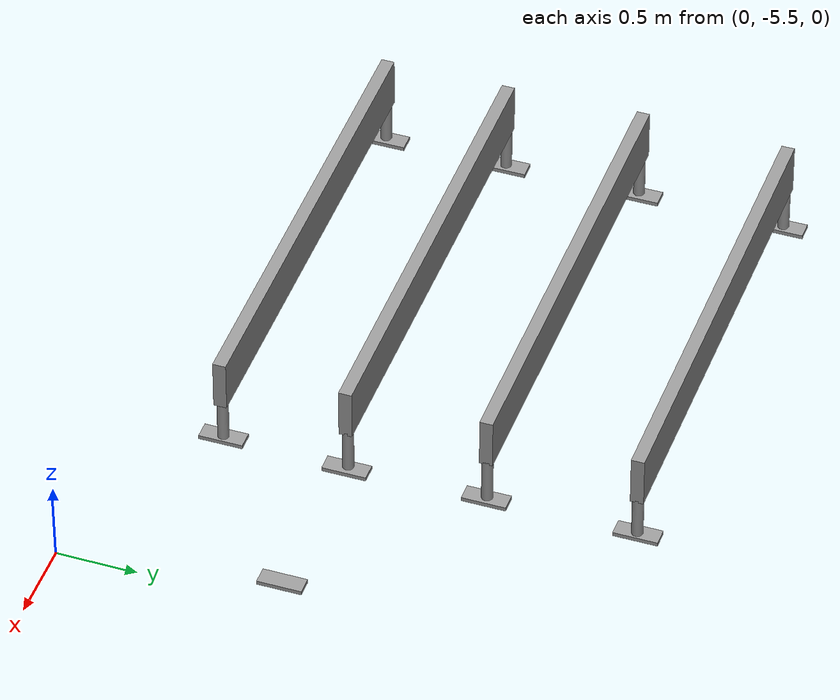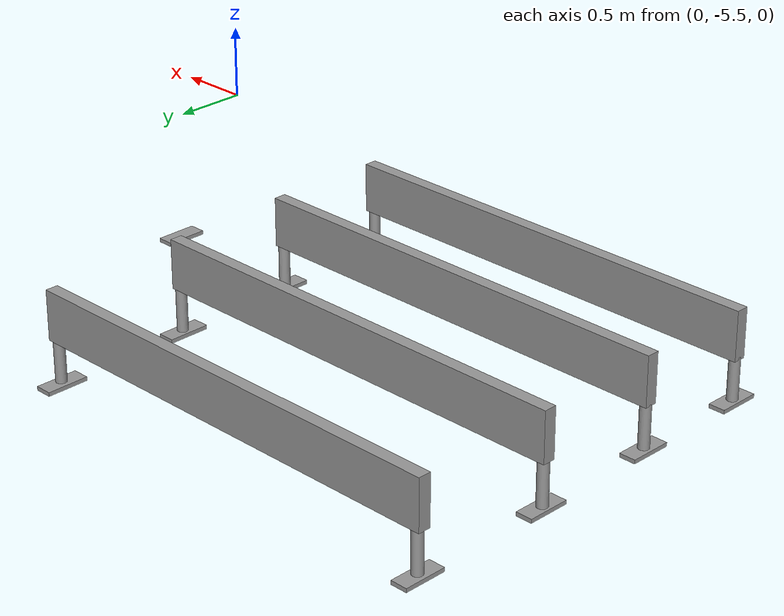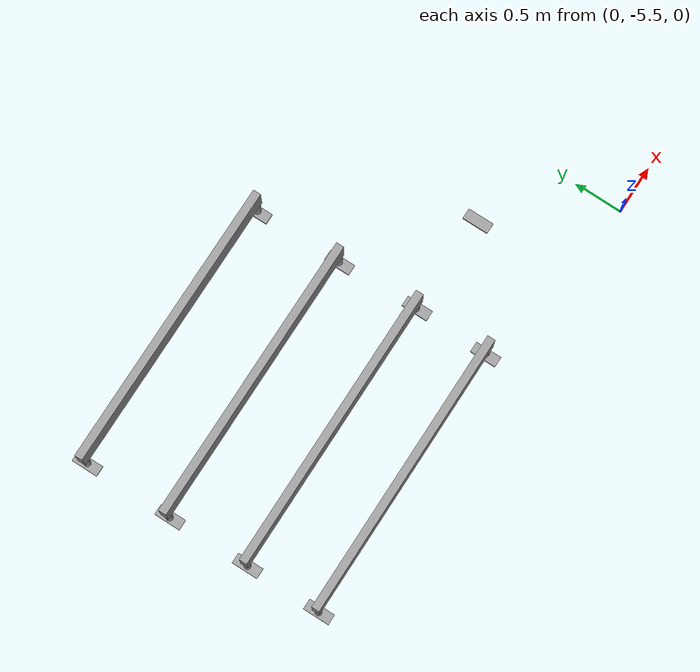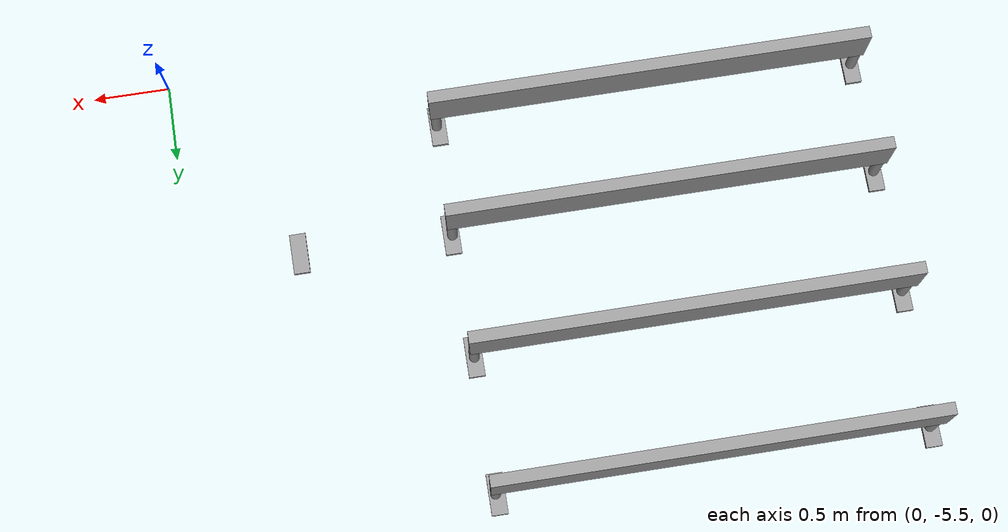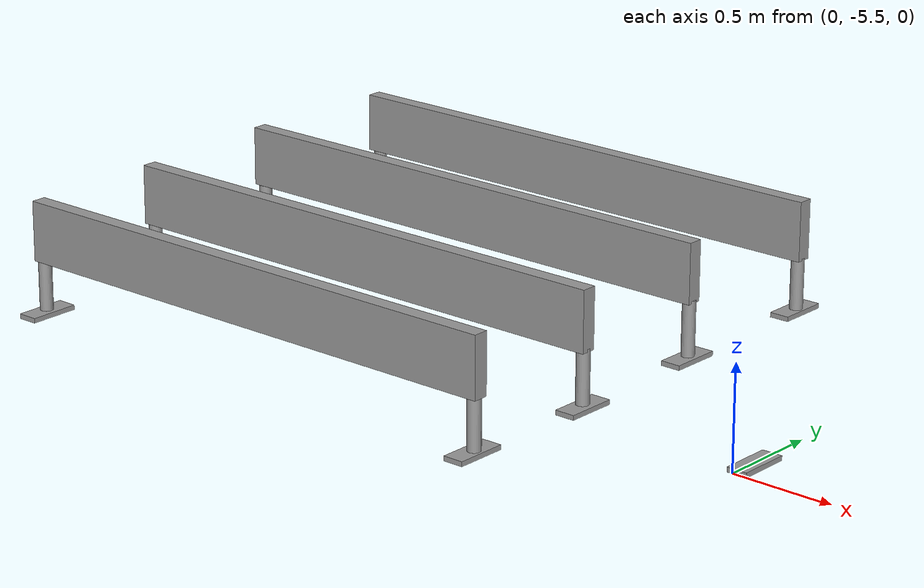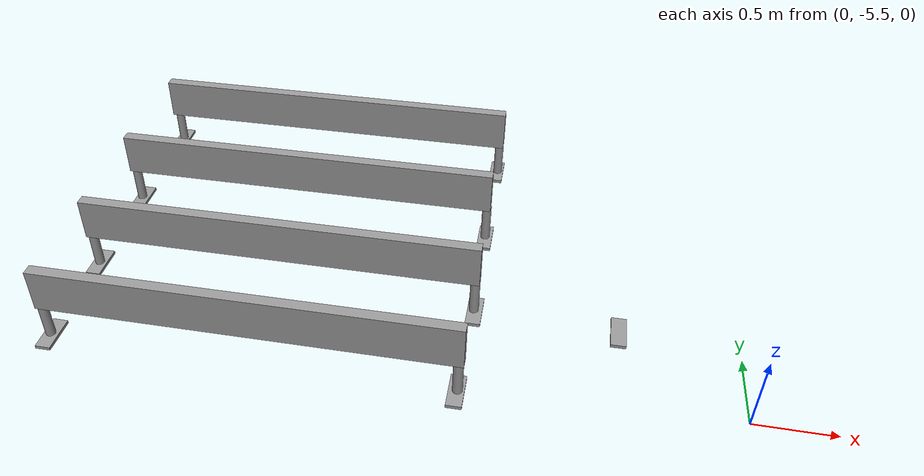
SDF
<sdf version="1.6">
 <model name="banchi">
  <link name="link_0_clone_11">
   <inertial>
    <mass>0.000785881</mass>
    <inertia>
     <ixx>5.11476e-06</ixx>
     <ixy>0</ixy>
     <ixz>0</ixz>
     <iyy>8.37345e-07</iyy>
     <iyz>0</iyz>
     <izz>5.8658e-06</izz>
    </inertia>
   </inertial>
   <pose>-0.686084 -4.37283 -0.495327 0 -0 0</pose>
   <visual name="visual">
    <geometry><box><size>0.110122 0.278282 0.025669</size></box></geometry>
    <material>
     <lighting>1</lighting>
     <script><uri>file://media/materials/scripts/gazebo.material</uri><name>Gazebo/Grey</name></script>
     <shader type="pixel"/>
    </material>
   </visual>
   <collision name="collision">
    <geometry><box><size>0.110122 0.278282 0.025669</size></box></geometry>
    <surface>
     <friction>
      <ode><mu>1</mu><mu2>1</mu2><fdir1>0 0 0</fdir1><slip1>0</slip1><slip2>0</slip2></ode>
      <torsional>
       <coefficient>1</coefficient>
       <patch_radius>0</patch_radius>
       <surface_radius>0</surface_radius>
       <use_patch_radius>1</use_patch_radius>
       <ode><slip>0</slip></ode>
      </torsional>
     </friction>
     <bounce><restitution_coefficient>0</restitution_coefficient><threshold>1e+06</threshold></bounce>
     <contact>
      <collide_without_contact>0</collide_without_contact>
      <collide_without_contact_bitmask>1</collide_without_contact_bitmask>
      <collide_bitmask>1</collide_bitmask>
      <ode>
       <soft_cfm>0</soft_cfm>
       <soft_erp>0.2</soft_erp>
       <kp>1e+13</kp>
       <kd>1</kd>
       <max_vel>0.01</max_vel>
       <min_depth>0</min_depth>
      </ode>
      <bullet>
       <split_impulse>1</split_impulse>
       <split_impulse_penetration_threshold>-0.01</split_impulse_penetration_threshold>
       <soft_cfm>0</soft_cfm>
       <soft_erp>0.2</soft_erp>
       <kp>1e+13</kp>
       <kd>1</kd>
      </bullet>
     </contact>
    </surface>
   </collision>
  </link>
  <link name="link_0_clone_14">
   <inertial>
    <mass>0.000785881</mass>
    <inertia>
     <ixx>5.11476e-06</ixx>
     <ixy>0</ixy>
     <ixz>0</ixz>
     <iyy>8.37345e-07</iyy>
     <iyz>0</iyz>
     <izz>5.8658e-06</izz>
    </inertia>
   </inertial>
   <pose>-1.75959 -2.54035 -0.495327 0 -0 0</pose>
   <visual name="visual">
    <geometry><box><size>0.110122 0.278282 0.025669</size></box></geometry>
    <material>
     <lighting>1</lighting>
     <script><uri>file://media/materials/scripts/gazebo.material</uri><name>Gazebo/Grey</name></script>
     <shader type="pixel"/>
    </material>
   </visual>
   <collision name="collision">
    <geometry><box><size>0.110122 0.278282 0.025669</size></box></geometry>
    <surface>
     <friction>
      <ode><mu>1</mu><mu2>1</mu2><fdir1>0 0 0</fdir1><slip1>0</slip1><slip2>0</slip2></ode>
      <torsional>
       <coefficient>1</coefficient>
       <patch_radius>0</patch_radius>
       <surface_radius>0</surface_radius>
       <use_patch_radius>1</use_patch_radius>
       <ode><slip>0</slip></ode>
      </torsional>
     </friction>
     <bounce><restitution_coefficient>0</restitution_coefficient><threshold>1e+06</threshold></bounce>
     <contact>
      <collide_without_contact>0</collide_without_contact>
      <collide_without_contact_bitmask>1</collide_without_contact_bitmask>
      <collide_bitmask>1</collide_bitmask>
      <ode>
       <soft_cfm>0</soft_cfm>
       <soft_erp>0.2</soft_erp>
       <kp>1e+13</kp>
       <kd>1</kd>
       <max_vel>0.01</max_vel>
       <min_depth>0</min_depth>
      </ode>
      <bullet>
       <split_impulse>1</split_impulse>
       <split_impulse_penetration_threshold>-0.01</split_impulse_penetration_threshold>
       <soft_cfm>0</soft_cfm>
       <soft_erp>0.2</soft_erp>
       <kp>1e+13</kp>
       <kd>1</kd>
      </bullet>
     </contact>
    </surface>
   </collision>
  </link>
  <link name="link_0_clone_15">
   <inertial>
    <mass>0.000785881</mass>
    <inertia>
     <ixx>5.11476e-06</ixx>
     <ixy>0</ixy>
     <ixz>0</ixz>
     <iyy>8.37345e-07</iyy>
     <iyz>0</iyz>
     <izz>5.8658e-06</izz>
    </inertia>
   </inertial>
   <pose>-1.75172 -3.47821 -0.495327 0 -0 0</pose>
   <visual name="visual">
    <geometry><box><size>0.110122 0.278282 0.025669</size></box></geometry>
    <material>
     <lighting>1</lighting>
     <script><uri>file://media/materials/scripts/gazebo.material</uri><name>Gazebo/Grey</name></script>
     <shader type="pixel"/>
    </material>
   </visual>
   <collision name="collision">
    <geometry><box><size>0.110122 0.278282 0.025669</size></box></geometry>
    <surface>
     <friction>
      <ode><mu>1</mu><mu2>1</mu2><fdir1>0 0 0</fdir1><slip1>0</slip1><slip2>0</slip2></ode>
      <torsional>
       <coefficient>1</coefficient>
       <patch_radius>0</patch_radius>
       <surface_radius>0</surface_radius>
       <use_patch_radius>1</use_patch_radius>
       <ode><slip>0</slip></ode>
      </torsional>
     </friction>
     <bounce><restitution_coefficient>0</restitution_coefficient><threshold>1e+06</threshold></bounce>
     <contact>
      <collide_without_contact>0</collide_without_contact>
      <collide_without_contact_bitmask>1</collide_without_contact_bitmask>
      <collide_bitmask>1</collide_bitmask>
      <ode>
       <soft_cfm>0</soft_cfm>
       <soft_erp>0.2</soft_erp>
       <kp>1e+13</kp>
       <kd>1</kd>
       <max_vel>0.01</max_vel>
       <min_depth>0</min_depth>
      </ode>
      <bullet>
       <split_impulse>1</split_impulse>
       <split_impulse_penetration_threshold>-0.01</split_impulse_penetration_threshold>
       <soft_cfm>0</soft_cfm>
       <soft_erp>0.2</soft_erp>
       <kp>1e+13</kp>
       <kd>1</kd>
      </bullet>
     </contact>
    </surface>
   </collision>
  </link>
  <link name="link_0_clone_16">
   <inertial>
    <mass>0.000785881</mass>
    <inertia>
     <ixx>5.11476e-06</ixx>
     <ixy>0</ixy>
     <ixz>0</ixz>
     <iyy>8.37345e-07</iyy>
     <iyz>0</iyz>
     <izz>5.8658e-06</izz>
    </inertia>
   </inertial>
   <pose>-1.72573 -4.34491 -0.495327 0 -0 0</pose>
   <visual name="visual">
    <geometry><box><size>0.110122 0.278282 0.025669</size></box></geometry>
    <material>
     <lighting>1</lighting>
     <script><uri>file://media/materials/scripts/gazebo.material</uri><name>Gazebo/Grey</name></script>
     <shader type="pixel"/>
    </material>
   </visual>
   <collision name="collision">
    <geometry><box><size>0.110122 0.278282 0.025669</size></box></geometry>
    <surface>
     <friction>
      <ode><mu>1</mu><mu2>1</mu2><fdir1>0 0 0</fdir1><slip1>0</slip1><slip2>0</slip2></ode>
      <torsional>
       <coefficient>1</coefficient>
       <patch_radius>0</patch_radius>
       <surface_radius>0</surface_radius>
       <use_patch_radius>1</use_patch_radius>
       <ode><slip>0</slip></ode>
      </torsional>
     </friction>
     <bounce><restitution_coefficient>0</restitution_coefficient><threshold>1e+06</threshold></bounce>
     <contact>
      <collide_without_contact>0</collide_without_contact>
      <collide_without_contact_bitmask>1</collide_without_contact_bitmask>
      <collide_bitmask>1</collide_bitmask>
      <ode>
       <soft_cfm>0</soft_cfm>
       <soft_erp>0.2</soft_erp>
       <kp>1e+13</kp>
       <kd>1</kd>
       <max_vel>0.01</max_vel>
       <min_depth>0</min_depth>
      </ode>
      <bullet>
       <split_impulse>1</split_impulse>
       <split_impulse_penetration_threshold>-0.01</split_impulse_penetration_threshold>
       <soft_cfm>0</soft_cfm>
       <soft_erp>0.2</soft_erp>
       <kp>1e+13</kp>
       <kd>1</kd>
      </bullet>
     </contact>
    </surface>
   </collision>
  </link>
  <link name="link_0_clone_17">
   <inertial>
    <mass>0.000785881</mass>
    <inertia>
     <ixx>5.11476e-06</ixx>
     <ixy>0</ixy>
     <ixz>0</ixz>
     <iyy>8.37345e-07</iyy>
     <iyz>0</iyz>
     <izz>5.8658e-06</izz>
    </inertia>
   </inertial>
   <pose>-1.74948 -5.13394 -0.495327 0 -0 0</pose>
   <visual name="visual">
    <geometry><box><size>0.110122 0.278282 0.025669</size></box></geometry>
    <material>
     <lighting>1</lighting>
     <script><uri>file://media/materials/scripts/gazebo.material</uri><name>Gazebo/Grey</name></script>
     <shader type="pixel"/>
    </material>
   </visual>
   <collision name="collision">
    <geometry><box><size>0.110122 0.278282 0.025669</size></box></geometry>
    <surface>
     <friction>
      <ode><mu>1</mu><mu2>1</mu2><fdir1>0 0 0</fdir1><slip1>0</slip1><slip2>0</slip2></ode>
      <torsional>
       <coefficient>1</coefficient>
       <patch_radius>0</patch_radius>
       <surface_radius>0</surface_radius>
       <use_patch_radius>1</use_patch_radius>
       <ode><slip>0</slip></ode>
      </torsional>
     </friction>
     <bounce><restitution_coefficient>0</restitution_coefficient><threshold>1e+06</threshold></bounce>
     <contact>
      <collide_without_contact>0</collide_without_contact>
      <collide_without_contact_bitmask>1</collide_without_contact_bitmask>
      <collide_bitmask>1</collide_bitmask>
      <ode>
       <soft_cfm>0</soft_cfm>
       <soft_erp>0.2</soft_erp>
       <kp>1e+13</kp>
       <kd>1</kd>
       <max_vel>0.01</max_vel>
       <min_depth>0</min_depth>
      </ode>
      <bullet>
       <split_impulse>1</split_impulse>
       <split_impulse_penetration_threshold>-0.01</split_impulse_penetration_threshold>
       <soft_cfm>0</soft_cfm>
       <soft_erp>0.2</soft_erp>
       <kp>1e+13</kp>
       <kd>1</kd>
      </bullet>
     </contact>
    </surface>
   </collision>
  </link>
  <link name="link_0_clone_26">
   <inertial>
    <mass>0.000785881</mass>
    <inertia>
     <ixx>5.11476e-06</ixx>
     <ixy>0</ixy>
     <ixz>0</ixz>
     <iyy>8.37345e-07</iyy>
     <iyz>0</iyz>
     <izz>5.8658e-06</izz>
    </inertia>
   </inertial>
   <pose>-4.66408 -5.13633 -0.495327 0 -0 0</pose>
   <visual name="visual">
    <geometry><box><size>0.110122 0.278282 0.025669</size></box></geometry>
    <material>
     <lighting>1</lighting>
     <script><uri>file://media/materials/scripts/gazebo.material</uri><name>Gazebo/Grey</name></script>
     <shader type="pixel"/>
    </material>
   </visual>
   <collision name="collision">
    <geometry><box><size>0.110122 0.278282 0.025669</size></box></geometry>
    <surface>
     <friction>
      <ode><mu>1</mu><mu2>1</mu2><fdir1>0 0 0</fdir1><slip1>0</slip1><slip2>0</slip2></ode>
      <torsional>
       <coefficient>1</coefficient>
       <patch_radius>0</patch_radius>
       <surface_radius>0</surface_radius>
       <use_patch_radius>1</use_patch_radius>
       <ode><slip>0</slip></ode>
      </torsional>
     </friction>
     <bounce><restitution_coefficient>0</restitution_coefficient><threshold>1e+06</threshold></bounce>
     <contact>
      <collide_without_contact>0</collide_without_contact>
      <collide_without_contact_bitmask>1</collide_without_contact_bitmask>
      <collide_bitmask>1</collide_bitmask>
      <ode>
       <soft_cfm>0</soft_cfm>
       <soft_erp>0.2</soft_erp>
       <kp>1e+13</kp>
       <kd>1</kd>
       <max_vel>0.01</max_vel>
       <min_depth>0</min_depth>
      </ode>
      <bullet>
       <split_impulse>1</split_impulse>
       <split_impulse_penetration_threshold>-0.01</split_impulse_penetration_threshold>
       <soft_cfm>0</soft_cfm>
       <soft_erp>0.2</soft_erp>
       <kp>1e+13</kp>
       <kd>1</kd>
      </bullet>
     </contact>
    </surface>
   </collision>
  </link>
  <link name="link_0_clone_27">
   <inertial>
    <mass>0.000785881</mass>
    <inertia>
     <ixx>5.11476e-06</ixx>
     <ixy>0</ixy>
     <ixz>0</ixz>
     <iyy>8.37345e-07</iyy>
     <iyz>0</iyz>
     <izz>5.8658e-06</izz>
    </inertia>
   </inertial>
   <pose>-4.66477 -4.33939 -0.495327 0 -0 0</pose>
   <visual name="visual">
    <geometry><box><size>0.110122 0.278282 0.025669</size></box></geometry>
    <material>
     <lighting>1</lighting>
     <script><uri>file://media/materials/scripts/gazebo.material</uri><name>Gazebo/Grey</name></script>
     <shader type="pixel"/>
    </material>
   </visual>
   <collision name="collision">
    <geometry><box><size>0.110122 0.278282 0.025669</size></box></geometry>
    <surface>
     <friction>
      <ode><mu>1</mu><mu2>1</mu2><fdir1>0 0 0</fdir1><slip1>0</slip1><slip2>0</slip2></ode>
      <torsional>
       <coefficient>1</coefficient>
       <patch_radius>0</patch_radius>
       <surface_radius>0</surface_radius>
       <use_patch_radius>1</use_patch_radius>
       <ode><slip>0</slip></ode>
      </torsional>
     </friction>
     <bounce><restitution_coefficient>0</restitution_coefficient><threshold>1e+06</threshold></bounce>
     <contact>
      <collide_without_contact>0</collide_without_contact>
      <collide_without_contact_bitmask>1</collide_without_contact_bitmask>
      <collide_bitmask>1</collide_bitmask>
      <ode>
       <soft_cfm>0</soft_cfm>
       <soft_erp>0.2</soft_erp>
       <kp>1e+13</kp>
       <kd>1</kd>
       <max_vel>0.01</max_vel>
       <min_depth>0</min_depth>
      </ode>
      <bullet>
       <split_impulse>1</split_impulse>
       <split_impulse_penetration_threshold>-0.01</split_impulse_penetration_threshold>
       <soft_cfm>0</soft_cfm>
       <soft_erp>0.2</soft_erp>
       <kp>1e+13</kp>
       <kd>1</kd>
      </bullet>
     </contact>
    </surface>
   </collision>
  </link>
  <link name="link_0_clone_28">
   <inertial>
    <mass>0.000785881</mass>
    <inertia>
     <ixx>5.11476e-06</ixx>
     <ixy>0</ixy>
     <ixz>0</ixz>
     <iyy>8.37345e-07</iyy>
     <iyz>0</iyz>
     <izz>5.8658e-06</izz>
    </inertia>
   </inertial>
   <pose>-4.67715 -3.47463 -0.495327 0 -0 0</pose>
   <visual name="visual">
    <geometry><box><size>0.110122 0.278282 0.025669</size></box></geometry>
    <material>
     <lighting>1</lighting>
     <script><uri>file://media/materials/scripts/gazebo.material</uri><name>Gazebo/Grey</name></script>
     <shader type="pixel"/>
    </material>
   </visual>
   <collision name="collision">
    <geometry><box><size>0.110122 0.278282 0.025669</size></box></geometry>
    <surface>
     <friction>
      <ode><mu>1</mu><mu2>1</mu2><fdir1>0 0 0</fdir1><slip1>0</slip1><slip2>0</slip2></ode>
      <torsional>
       <coefficient>1</coefficient>
       <patch_radius>0</patch_radius>
       <surface_radius>0</surface_radius>
       <use_patch_radius>1</use_patch_radius>
       <ode><slip>0</slip></ode>
      </torsional>
     </friction>
     <bounce><restitution_coefficient>0</restitution_coefficient><threshold>1e+06</threshold></bounce>
     <contact>
      <collide_without_contact>0</collide_without_contact>
      <collide_without_contact_bitmask>1</collide_without_contact_bitmask>
      <collide_bitmask>1</collide_bitmask>
      <ode>
       <soft_cfm>0</soft_cfm>
       <soft_erp>0.2</soft_erp>
       <kp>1e+13</kp>
       <kd>1</kd>
       <max_vel>0.01</max_vel>
       <min_depth>0</min_depth>
      </ode>
      <bullet>
       <split_impulse>1</split_impulse>
       <split_impulse_penetration_threshold>-0.01</split_impulse_penetration_threshold>
       <soft_cfm>0</soft_cfm>
       <soft_erp>0.2</soft_erp>
       <kp>1e+13</kp>
       <kd>1</kd>
      </bullet>
     </contact>
    </surface>
   </collision>
  </link>
  <link name="link_0_clone_29">
   <inertial>
    <mass>0.000785881</mass>
    <inertia>
     <ixx>5.11476e-06</ixx>
     <ixy>0</ixy>
     <ixz>0</ixz>
     <iyy>8.37345e-07</iyy>
     <iyz>0</iyz>
     <izz>5.8658e-06</izz>
    </inertia>
   </inertial>
   <pose>-4.67502 -2.53758 -0.495327 0 -0 0</pose>
   <visual name="visual">
    <geometry><box><size>0.110122 0.278282 0.025669</size></box></geometry>
    <material>
     <lighting>1</lighting>
     <script><uri>file://media/materials/scripts/gazebo.material</uri><name>Gazebo/Grey</name></script>
     <shader type="pixel"/>
    </material>
   </visual>
   <collision name="collision">
    <geometry><box><size>0.110122 0.278282 0.025669</size></box></geometry>
    <surface>
     <friction>
      <ode><mu>1</mu><mu2>1</mu2><fdir1>0 0 0</fdir1><slip1>0</slip1><slip2>0</slip2></ode>
      <torsional>
       <coefficient>1</coefficient>
       <patch_radius>0</patch_radius>
       <surface_radius>0</surface_radius>
       <use_patch_radius>1</use_patch_radius>
       <ode><slip>0</slip></ode>
      </torsional>
     </friction>
     <bounce><restitution_coefficient>0</restitution_coefficient><threshold>1e+06</threshold></bounce>
     <contact>
      <collide_without_contact>0</collide_without_contact>
      <collide_without_contact_bitmask>1</collide_without_contact_bitmask>
      <collide_bitmask>1</collide_bitmask>
      <ode>
       <soft_cfm>0</soft_cfm>
       <soft_erp>0.2</soft_erp>
       <kp>1e+13</kp>
       <kd>1</kd>
       <max_vel>0.01</max_vel>
       <min_depth>0</min_depth>
      </ode>
      <bullet>
       <split_impulse>1</split_impulse>
       <split_impulse_penetration_threshold>-0.01</split_impulse_penetration_threshold>
       <soft_cfm>0</soft_cfm>
       <soft_erp>0.2</soft_erp>
       <kp>1e+13</kp>
       <kd>1</kd>
      </bullet>
     </contact>
    </surface>
   </collision>
  </link>
  <link name="link_6_clone_clone_3_clone_0">
   <pose>-3.21741 -2.54032 -0.048661 0 -0 0</pose>
   <inertial>
    <mass>0.0822689</mass>
    <inertia>
     <ixx>0.00690216</ixx>
     <ixy>0</ixy>
     <ixz>0</ixz>
     <iyy>0.0137115</iyy>
     <iyz>0</iyz>
     <izz>0.00690216</izz>
    </inertia>
   </inertial>
   <visual name="visual">
    <geometry><box><size>3 0.082269 0.32559</size></box></geometry>
    <material>
     <lighting>1</lighting>
     <script><uri>file://media/materials/scripts/gazebo.material</uri><name>Gazebo/Grey</name></script>
     <ambient>0.3 0.3 0.3 1</ambient>
     <diffuse>0.7 0.7 0.7 1</diffuse>
     <specular>0.01 0.01 0.01 1</specular>
     <emissive>0 0 0 1</emissive>
     <shader type="vertex"><normal_map>__default__</normal_map></shader>
    </material>
   </visual>
   <collision name="collision">
    <geometry><box><size>3 0.082269 0.32559</size></box></geometry>
    <surface>
     <friction>
      <ode><mu>1</mu><mu2>1</mu2><fdir1>0 0 0</fdir1><slip1>0</slip1><slip2>0</slip2></ode>
      <torsional>
       <coefficient>1</coefficient>
       <patch_radius>0</patch_radius>
       <surface_radius>0</surface_radius>
       <use_patch_radius>1</use_patch_radius>
       <ode><slip>0</slip></ode>
      </torsional>
     </friction>
     <bounce><restitution_coefficient>0</restitution_coefficient><threshold>1e+06</threshold></bounce>
     <contact>
      <collide_without_contact>0</collide_without_contact>
      <collide_without_contact_bitmask>1</collide_without_contact_bitmask>
      <collide_bitmask>1</collide_bitmask>
      <ode>
       <soft_cfm>0</soft_cfm>
       <soft_erp>0.2</soft_erp>
       <kp>1e+13</kp>
       <kd>1</kd>
       <max_vel>0.01</max_vel>
       <min_depth>0</min_depth>
      </ode>
      <bullet>
       <split_impulse>1</split_impulse>
       <split_impulse_penetration_threshold>-0.01</split_impulse_penetration_threshold>
       <soft_cfm>0</soft_cfm>
       <soft_erp>0.2</soft_erp>
       <kp>1e+13</kp>
       <kd>1</kd>
      </bullet>
     </contact>
    </surface>
   </collision>
  </link>
  <link name="link_6_clone_clone_4">
   <pose>-3.22275 -3.47335 -0.034195 0 -0 0</pose>
   <inertial>
    <mass>0.0822689</mass>
    <inertia>
     <ixx>0.00690216</ixx>
     <ixy>0</ixy>
     <ixz>0</ixz>
     <iyy>0.0137115</iyy>
     <iyz>0</iyz>
     <izz>0.00690216</izz>
    </inertia>
   </inertial>
   <visual name="visual">
    <geometry><box><size>3 0.082269 0.32559</size></box></geometry>
    <material>
     <lighting>1</lighting>
     <script><uri>file://media/materials/scripts/gazebo.material</uri><name>Gazebo/Grey</name></script>
     <ambient>0.3 0.3 0.3 1</ambient>
     <diffuse>0.7 0.7 0.7 1</diffuse>
     <specular>0.01 0.01 0.01 1</specular>
     <emissive>0 0 0 1</emissive>
     <shader type="vertex"><normal_map>__default__</normal_map></shader>
    </material>
   </visual>
   <collision name="collision">
    <geometry><box><size>3 0.082269 0.32559</size></box></geometry>
    <surface>
     <friction>
      <ode><mu>1</mu><mu2>1</mu2><fdir1>0 0 0</fdir1><slip1>0</slip1><slip2>0</slip2></ode>
      <torsional>
       <coefficient>1</coefficient>
       <patch_radius>0</patch_radius>
       <surface_radius>0</surface_radius>
       <use_patch_radius>1</use_patch_radius>
       <ode><slip>0</slip></ode>
      </torsional>
     </friction>
     <bounce><restitution_coefficient>0</restitution_coefficient><threshold>1e+06</threshold></bounce>
     <contact>
      <collide_without_contact>0</collide_without_contact>
      <collide_without_contact_bitmask>1</collide_without_contact_bitmask>
      <collide_bitmask>1</collide_bitmask>
      <ode>
       <soft_cfm>0</soft_cfm>
       <soft_erp>0.2</soft_erp>
       <kp>1e+13</kp>
       <kd>1</kd>
       <max_vel>0.01</max_vel>
       <min_depth>0</min_depth>
      </ode>
      <bullet>
       <split_impulse>1</split_impulse>
       <split_impulse_penetration_threshold>-0.01</split_impulse_penetration_threshold>
       <soft_cfm>0</soft_cfm>
       <soft_erp>0.2</soft_erp>
       <kp>1e+13</kp>
       <kd>1</kd>
      </bullet>
     </contact>
    </surface>
   </collision>
  </link>
  <link name="link_6_clone_clone_4_clone">
   <pose>-3.19955 -4.34202 -0.043079 0 -0 0</pose>
   <inertial>
    <mass>0.0822689</mass>
    <inertia>
     <ixx>0.00690216</ixx>
     <ixy>0</ixy>
     <ixz>0</ixz>
     <iyy>0.0137115</iyy>
     <iyz>0</iyz>
     <izz>0.00690216</izz>
    </inertia>
   </inertial>
   <visual name="visual">
    <geometry><box><size>3 0.082269 0.32559</size></box></geometry>
    <material>
     <lighting>1</lighting>
     <script><uri>file://media/materials/scripts/gazebo.material</uri><name>Gazebo/Grey</name></script>
     <ambient>0.3 0.3 0.3 1</ambient>
     <diffuse>0.7 0.7 0.7 1</diffuse>
     <specular>0.01 0.01 0.01 1</specular>
     <emissive>0 0 0 1</emissive>
     <shader type="vertex"><normal_map>__default__</normal_map></shader>
    </material>
   </visual>
   <collision name="collision">
    <geometry><box><size>3 0.082269 0.32559</size></box></geometry>
    <surface>
     <friction>
      <ode><mu>1</mu><mu2>1</mu2><fdir1>0 0 0</fdir1><slip1>0</slip1><slip2>0</slip2></ode>
      <torsional>
       <coefficient>1</coefficient>
       <patch_radius>0</patch_radius>
       <surface_radius>0</surface_radius>
       <use_patch_radius>1</use_patch_radius>
       <ode><slip>0</slip></ode>
      </torsional>
     </friction>
     <bounce><restitution_coefficient>0</restitution_coefficient><threshold>1e+06</threshold></bounce>
     <contact>
      <collide_without_contact>0</collide_without_contact>
      <collide_without_contact_bitmask>1</collide_without_contact_bitmask>
      <collide_bitmask>1</collide_bitmask>
      <ode>
       <soft_cfm>0</soft_cfm>
       <soft_erp>0.2</soft_erp>
       <kp>1e+13</kp>
       <kd>1</kd>
       <max_vel>0.01</max_vel>
       <min_depth>0</min_depth>
      </ode>
      <bullet>
       <split_impulse>1</split_impulse>
       <split_impulse_penetration_threshold>-0.01</split_impulse_penetration_threshold>
       <soft_cfm>0</soft_cfm>
       <soft_erp>0.2</soft_erp>
       <kp>1e+13</kp>
       <kd>1</kd>
      </bullet>
     </contact>
    </surface>
   </collision>
  </link>
  <link name="link_6_clone_clone_4_clone_0">
   <pose>-3.20261 -5.13275 -0.051777 0 -0 0</pose>
   <inertial>
    <mass>0.0822689</mass>
    <inertia>
     <ixx>0.00690216</ixx>
     <ixy>0</ixy>
     <ixz>0</ixz>
     <iyy>0.0137115</iyy>
     <iyz>0</iyz>
     <izz>0.00690216</izz>
    </inertia>
   </inertial>
   <visual name="visual">
    <geometry><box><size>3 0.082269 0.32559</size></box></geometry>
    <material>
     <lighting>1</lighting>
     <script><uri>file://media/materials/scripts/gazebo.material</uri><name>Gazebo/Grey</name></script>
     <ambient>0.3 0.3 0.3 1</ambient>
     <diffuse>0.7 0.7 0.7 1</diffuse>
     <specular>0.01 0.01 0.01 1</specular>
     <emissive>0 0 0 1</emissive>
     <shader type="vertex"><normal_map>__default__</normal_map></shader>
    </material>
   </visual>
   <collision name="collision">
    <geometry><box><size>3 0.082269 0.32559</size></box></geometry>
    <surface>
     <friction>
      <ode><mu>1</mu><mu2>1</mu2><fdir1>0 0 0</fdir1><slip1>0</slip1><slip2>0</slip2></ode>
      <torsional>
       <coefficient>1</coefficient>
       <patch_radius>0</patch_radius>
       <surface_radius>0</surface_radius>
       <use_patch_radius>1</use_patch_radius>
       <ode><slip>0</slip></ode>
      </torsional>
     </friction>
     <bounce><restitution_coefficient>0</restitution_coefficient><threshold>1e+06</threshold></bounce>
     <contact>
      <collide_without_contact>0</collide_without_contact>
      <collide_without_contact_bitmask>1</collide_without_contact_bitmask>
      <collide_bitmask>1</collide_bitmask>
      <ode>
       <soft_cfm>0</soft_cfm>
       <soft_erp>0.2</soft_erp>
       <kp>1e+13</kp>
       <kd>1</kd>
       <max_vel>0.01</max_vel>
       <min_depth>0</min_depth>
      </ode>
      <bullet>
       <split_impulse>1</split_impulse>
       <split_impulse_penetration_threshold>-0.01</split_impulse_penetration_threshold>
       <soft_cfm>0</soft_cfm>
       <soft_erp>0.2</soft_erp>
       <kp>1e+13</kp>
       <kd>1</kd>
      </bullet>
     </contact>
    </surface>
   </collision>
  </link>
  <link name="link_7_clone_2_clone">
   <pose>-1.74219 -5.13182 -0.350253 0 -0 0</pose>
   <inertial>
    <mass>0.00501927</mass>
    <inertia>
     <ixx>0.000419846</ixx>
     <ixy>0</ixy>
     <ixz>0</ixz>
     <iyy>0.000419846</iyy>
     <iyz>0</iyz>
     <izz>3.14914e-06</izz>
    </inertia>
   </inertial>
   <visual name="visual">
    <geometry><cylinder><radius>0.0354247</radius><length>0.3</length></cylinder></geometry>
    <material>
     <lighting>1</lighting>
     <script><uri>file://media/materials/scripts/gazebo.material</uri><name>Gazebo/Grey</name></script>
     <ambient>0.3 0.3 0.3 1</ambient>
     <diffuse>0.7 0.7 0.7 1</diffuse>
     <specular>0.01 0.01 0.01 1</specular>
     <emissive>0 0 0 1</emissive>
     <shader type="vertex"><normal_map>__default__</normal_map></shader>
    </material>
   </visual>
   <collision name="collision">
    <geometry><cylinder><radius>0.035425</radius><length>0.3</length></cylinder></geometry>
    <surface>
     <friction>
      <ode><mu>1</mu><mu2>1</mu2><fdir1>0 0 0</fdir1><slip1>0</slip1><slip2>0</slip2></ode>
      <torsional>
       <coefficient>1</coefficient>
       <patch_radius>0</patch_radius>
       <surface_radius>0</surface_radius>
       <use_patch_radius>1</use_patch_radius>
       <ode><slip>0</slip></ode>
      </torsional>
     </friction>
     <bounce><restitution_coefficient>0</restitution_coefficient><threshold>1e+06</threshold></bounce>
     <contact>
      <collide_without_contact>0</collide_without_contact>
      <collide_without_contact_bitmask>1</collide_without_contact_bitmask>
      <collide_bitmask>1</collide_bitmask>
      <ode>
       <soft_cfm>0</soft_cfm>
       <soft_erp>0.2</soft_erp>
       <kp>1e+13</kp>
       <kd>1</kd>
       <max_vel>0.01</max_vel>
       <min_depth>0</min_depth>
      </ode>
      <bullet>
       <split_impulse>1</split_impulse>
       <split_impulse_penetration_threshold>-0.01</split_impulse_penetration_threshold>
       <soft_cfm>0</soft_cfm>
       <soft_erp>0.2</soft_erp>
       <kp>1e+13</kp>
       <kd>1</kd>
      </bullet>
     </contact>
    </surface>
   </collision>
  </link>
  <link name="link_7_clone_2_clone_0">
   <pose>-1.73348 -4.33789 -0.341 0 -0 0</pose>
   <inertial>
    <mass>0.00501927</mass>
    <inertia>
     <ixx>0.000419846</ixx>
     <ixy>0</ixy>
     <ixz>0</ixz>
     <iyy>0.000419846</iyy>
     <iyz>0</iyz>
     <izz>3.14914e-06</izz>
    </inertia>
   </inertial>
   <visual name="visual">
    <geometry><cylinder><radius>0.0354247</radius><length>0.3</length></cylinder></geometry>
    <material>
     <lighting>1</lighting>
     <script><uri>file://media/materials/scripts/gazebo.material</uri><name>Gazebo/Grey</name></script>
     <ambient>0.3 0.3 0.3 1</ambient>
     <diffuse>0.7 0.7 0.7 1</diffuse>
     <specular>0.01 0.01 0.01 1</specular>
     <emissive>0 0 0 1</emissive>
     <shader type="vertex"><normal_map>__default__</normal_map></shader>
    </material>
   </visual>
   <collision name="collision">
    <geometry><cylinder><radius>0.035425</radius><length>0.3</length></cylinder></geometry>
    <surface>
     <friction>
      <ode><mu>1</mu><mu2>1</mu2><fdir1>0 0 0</fdir1><slip1>0</slip1><slip2>0</slip2></ode>
      <torsional>
       <coefficient>1</coefficient>
       <patch_radius>0</patch_radius>
       <surface_radius>0</surface_radius>
       <use_patch_radius>1</use_patch_radius>
       <ode><slip>0</slip></ode>
      </torsional>
     </friction>
     <bounce><restitution_coefficient>0</restitution_coefficient><threshold>1e+06</threshold></bounce>
     <contact>
      <collide_without_contact>0</collide_without_contact>
      <collide_without_contact_bitmask>1</collide_without_contact_bitmask>
      <collide_bitmask>1</collide_bitmask>
      <ode>
       <soft_cfm>0</soft_cfm>
       <soft_erp>0.2</soft_erp>
       <kp>1e+13</kp>
       <kd>1</kd>
       <max_vel>0.01</max_vel>
       <min_depth>0</min_depth>
      </ode>
      <bullet>
       <split_impulse>1</split_impulse>
       <split_impulse_penetration_threshold>-0.01</split_impulse_penetration_threshold>
       <soft_cfm>0</soft_cfm>
       <soft_erp>0.2</soft_erp>
       <kp>1e+13</kp>
       <kd>1</kd>
      </bullet>
     </contact>
    </surface>
   </collision>
  </link>
  <link name="link_7_clone_2_clone_1">
   <pose>-1.75227 -3.47358 -0.332822 0 -0 0</pose>
   <inertial>
    <mass>0.00501927</mass>
    <inertia>
     <ixx>0.000419846</ixx>
     <ixy>0</ixy>
     <ixz>0</ixz>
     <iyy>0.000419846</iyy>
     <iyz>0</iyz>
     <izz>3.14914e-06</izz>
    </inertia>
   </inertial>
   <visual name="visual">
    <geometry><cylinder><radius>0.0354247</radius><length>0.3</length></cylinder></geometry>
    <material>
     <lighting>1</lighting>
     <script><uri>file://media/materials/scripts/gazebo.material</uri><name>Gazebo/Grey</name></script>
     <ambient>0.3 0.3 0.3 1</ambient>
     <diffuse>0.7 0.7 0.7 1</diffuse>
     <specular>0.01 0.01 0.01 1</specular>
     <emissive>0 0 0 1</emissive>
     <shader type="vertex"><normal_map>__default__</normal_map></shader>
    </material>
   </visual>
   <collision name="collision">
    <geometry><cylinder><radius>0.035425</radius><length>0.3</length></cylinder></geometry>
    <surface>
     <friction>
      <ode><mu>1</mu><mu2>1</mu2><fdir1>0 0 0</fdir1><slip1>0</slip1><slip2>0</slip2></ode>
      <torsional>
       <coefficient>1</coefficient>
       <patch_radius>0</patch_radius>
       <surface_radius>0</surface_radius>
       <use_patch_radius>1</use_patch_radius>
       <ode><slip>0</slip></ode>
      </torsional>
     </friction>
     <bounce><restitution_coefficient>0</restitution_coefficient><threshold>1e+06</threshold></bounce>
     <contact>
      <collide_without_contact>0</collide_without_contact>
      <collide_without_contact_bitmask>1</collide_without_contact_bitmask>
      <collide_bitmask>1</collide_bitmask>
      <ode>
       <soft_cfm>0</soft_cfm>
       <soft_erp>0.2</soft_erp>
       <kp>1e+13</kp>
       <kd>1</kd>
       <max_vel>0.01</max_vel>
       <min_depth>0</min_depth>
      </ode>
      <bullet>
       <split_impulse>1</split_impulse>
       <split_impulse_penetration_threshold>-0.01</split_impulse_penetration_threshold>
       <soft_cfm>0</soft_cfm>
       <soft_erp>0.2</soft_erp>
       <kp>1e+13</kp>
       <kd>1</kd>
      </bullet>
     </contact>
    </surface>
   </collision>
  </link>
  <link name="link_7_clone_2_clone_19">
   <pose>-4.67169 -2.53692 -0.351715 0 -0 0</pose>
   <inertial>
    <mass>0.00501927</mass>
    <inertia>
     <ixx>0.000419846</ixx>
     <ixy>0</ixy>
     <ixz>0</ixz>
     <iyy>0.000419846</iyy>
     <iyz>0</iyz>
     <izz>3.14914e-06</izz>
    </inertia>
   </inertial>
   <visual name="visual">
    <geometry><cylinder><radius>0.0354247</radius><length>0.3</length></cylinder></geometry>
    <material>
     <lighting>1</lighting>
     <script><uri>file://media/materials/scripts/gazebo.material</uri><name>Gazebo/Grey</name></script>
     <ambient>0.3 0.3 0.3 1</ambient>
     <diffuse>0.7 0.7 0.7 1</diffuse>
     <specular>0.01 0.01 0.01 1</specular>
     <emissive>0 0 0 1</emissive>
     <shader type="vertex"><normal_map>__default__</normal_map></shader>
    </material>
   </visual>
   <collision name="collision">
    <geometry><cylinder><radius>0.035425</radius><length>0.3</length></cylinder></geometry>
    <surface>
     <friction>
      <ode><mu>1</mu><mu2>1</mu2><fdir1>0 0 0</fdir1><slip1>0</slip1><slip2>0</slip2></ode>
      <torsional>
       <coefficient>1</coefficient>
       <patch_radius>0</patch_radius>
       <surface_radius>0</surface_radius>
       <use_patch_radius>1</use_patch_radius>
       <ode><slip>0</slip></ode>
      </torsional>
     </friction>
     <bounce><restitution_coefficient>0</restitution_coefficient><threshold>1e+06</threshold></bounce>
     <contact>
      <collide_without_contact>0</collide_without_contact>
      <collide_without_contact_bitmask>1</collide_without_contact_bitmask>
      <collide_bitmask>1</collide_bitmask>
      <ode>
       <soft_cfm>0</soft_cfm>
       <soft_erp>0.2</soft_erp>
       <kp>1e+13</kp>
       <kd>1</kd>
       <max_vel>0.01</max_vel>
       <min_depth>0</min_depth>
      </ode>
      <bullet>
       <split_impulse>1</split_impulse>
       <split_impulse_penetration_threshold>-0.01</split_impulse_penetration_threshold>
       <soft_cfm>0</soft_cfm>
       <soft_erp>0.2</soft_erp>
       <kp>1e+13</kp>
       <kd>1</kd>
      </bullet>
     </contact>
    </surface>
   </collision>
  </link>
  <link name="link_7_clone_2_clone_2">
   <pose>-1.75122 -2.54226 -0.35106 0 -0 0</pose>
   <inertial>
    <mass>0.00501927</mass>
    <inertia>
     <ixx>0.000419846</ixx>
     <ixy>0</ixy>
     <ixz>0</ixz>
     <iyy>0.000419846</iyy>
     <iyz>0</iyz>
     <izz>3.14914e-06</izz>
    </inertia>
   </inertial>
   <visual name="visual">
    <geometry><cylinder><radius>0.0354247</radius><length>0.3</length></cylinder></geometry>
    <material>
     <lighting>1</lighting>
     <script><uri>file://media/materials/scripts/gazebo.material</uri><name>Gazebo/Grey</name></script>
     <ambient>0.3 0.3 0.3 1</ambient>
     <diffuse>0.7 0.7 0.7 1</diffuse>
     <specular>0.01 0.01 0.01 1</specular>
     <emissive>0 0 0 1</emissive>
     <shader type="vertex"><normal_map>__default__</normal_map></shader>
    </material>
   </visual>
   <collision name="collision">
    <geometry><cylinder><radius>0.035425</radius><length>0.3</length></cylinder></geometry>
    <surface>
     <friction>
      <ode><mu>1</mu><mu2>1</mu2><fdir1>0 0 0</fdir1><slip1>0</slip1><slip2>0</slip2></ode>
      <torsional>
       <coefficient>1</coefficient>
       <patch_radius>0</patch_radius>
       <surface_radius>0</surface_radius>
       <use_patch_radius>1</use_patch_radius>
       <ode><slip>0</slip></ode>
      </torsional>
     </friction>
     <bounce><restitution_coefficient>0</restitution_coefficient><threshold>1e+06</threshold></bounce>
     <contact>
      <collide_without_contact>0</collide_without_contact>
      <collide_without_contact_bitmask>1</collide_without_contact_bitmask>
      <collide_bitmask>1</collide_bitmask>
      <ode>
       <soft_cfm>0</soft_cfm>
       <soft_erp>0.2</soft_erp>
       <kp>1e+13</kp>
       <kd>1</kd>
       <max_vel>0.01</max_vel>
       <min_depth>0</min_depth>
      </ode>
      <bullet>
       <split_impulse>1</split_impulse>
       <split_impulse_penetration_threshold>-0.01</split_impulse_penetration_threshold>
       <soft_cfm>0</soft_cfm>
       <soft_erp>0.2</soft_erp>
       <kp>1e+13</kp>
       <kd>1</kd>
      </bullet>
     </contact>
    </surface>
   </collision>
  </link>
  <link name="link_7_clone_2_clone_20">
   <pose>-4.68208 -3.47595 -0.350518 0 -0 0</pose>
   <inertial>
    <mass>0.00501927</mass>
    <inertia>
     <ixx>0.000419846</ixx>
     <ixy>0</ixy>
     <ixz>0</ixz>
     <iyy>0.000419846</iyy>
     <iyz>0</iyz>
     <izz>3.14914e-06</izz>
    </inertia>
   </inertial>
   <visual name="visual">
    <geometry><cylinder><radius>0.0354247</radius><length>0.3</length></cylinder></geometry>
    <material>
     <lighting>1</lighting>
     <script><uri>file://media/materials/scripts/gazebo.material</uri><name>Gazebo/Grey</name></script>
     <ambient>0.3 0.3 0.3 1</ambient>
     <diffuse>0.7 0.7 0.7 1</diffuse>
     <specular>0.01 0.01 0.01 1</specular>
     <emissive>0 0 0 1</emissive>
     <shader type="vertex"><normal_map>__default__</normal_map></shader>
    </material>
   </visual>
   <collision name="collision">
    <geometry><cylinder><radius>0.035425</radius><length>0.3</length></cylinder></geometry>
    <surface>
     <friction>
      <ode><mu>1</mu><mu2>1</mu2><fdir1>0 0 0</fdir1><slip1>0</slip1><slip2>0</slip2></ode>
      <torsional>
       <coefficient>1</coefficient>
       <patch_radius>0</patch_radius>
       <surface_radius>0</surface_radius>
       <use_patch_radius>1</use_patch_radius>
       <ode><slip>0</slip></ode>
      </torsional>
     </friction>
     <bounce><restitution_coefficient>0</restitution_coefficient><threshold>1e+06</threshold></bounce>
     <contact>
      <collide_without_contact>0</collide_without_contact>
      <collide_without_contact_bitmask>1</collide_without_contact_bitmask>
      <collide_bitmask>1</collide_bitmask>
      <ode>
       <soft_cfm>0</soft_cfm>
       <soft_erp>0.2</soft_erp>
       <kp>1e+13</kp>
       <kd>1</kd>
       <max_vel>0.01</max_vel>
       <min_depth>0</min_depth>
      </ode>
      <bullet>
       <split_impulse>1</split_impulse>
       <split_impulse_penetration_threshold>-0.01</split_impulse_penetration_threshold>
       <soft_cfm>0</soft_cfm>
       <soft_erp>0.2</soft_erp>
       <kp>1e+13</kp>
       <kd>1</kd>
      </bullet>
     </contact>
    </surface>
   </collision>
  </link>
  <link name="link_7_clone_2_clone_21">
   <pose>-4.665 -4.34067 -0.347796 0 -0 0</pose>
   <inertial>
    <mass>0.00501927</mass>
    <inertia>
     <ixx>0.000419846</ixx>
     <ixy>0</ixy>
     <ixz>0</ixz>
     <iyy>0.000419846</iyy>
     <iyz>0</iyz>
     <izz>3.14914e-06</izz>
    </inertia>
   </inertial>
   <visual name="visual">
    <geometry><cylinder><radius>0.0354247</radius><length>0.3</length></cylinder></geometry>
    <material>
     <lighting>1</lighting>
     <script><uri>file://media/materials/scripts/gazebo.material</uri><name>Gazebo/Grey</name></script>
     <ambient>0.3 0.3 0.3 1</ambient>
     <diffuse>0.7 0.7 0.7 1</diffuse>
     <specular>0.01 0.01 0.01 1</specular>
     <emissive>0 0 0 1</emissive>
     <shader type="vertex"><normal_map>__default__</normal_map></shader>
    </material>
   </visual>
   <collision name="collision">
    <geometry><cylinder><radius>0.035425</radius><length>0.3</length></cylinder></geometry>
    <surface>
     <friction>
      <ode><mu>1</mu><mu2>1</mu2><fdir1>0 0 0</fdir1><slip1>0</slip1><slip2>0</slip2></ode>
      <torsional>
       <coefficient>1</coefficient>
       <patch_radius>0</patch_radius>
       <surface_radius>0</surface_radius>
       <use_patch_radius>1</use_patch_radius>
       <ode><slip>0</slip></ode>
      </torsional>
     </friction>
     <bounce><restitution_coefficient>0</restitution_coefficient><threshold>1e+06</threshold></bounce>
     <contact>
      <collide_without_contact>0</collide_without_contact>
      <collide_without_contact_bitmask>1</collide_without_contact_bitmask>
      <collide_bitmask>1</collide_bitmask>
      <ode>
       <soft_cfm>0</soft_cfm>
       <soft_erp>0.2</soft_erp>
       <kp>1e+13</kp>
       <kd>1</kd>
       <max_vel>0.01</max_vel>
       <min_depth>0</min_depth>
      </ode>
      <bullet>
       <split_impulse>1</split_impulse>
       <split_impulse_penetration_threshold>-0.01</split_impulse_penetration_threshold>
       <soft_cfm>0</soft_cfm>
       <soft_erp>0.2</soft_erp>
       <kp>1e+13</kp>
       <kd>1</kd>
      </bullet>
     </contact>
    </surface>
   </collision>
  </link>
  <link name="link_7_clone_2_clone_22">
   <pose>-4.66839 -5.13481 -0.346766 0 -0 0</pose>
   <inertial>
    <mass>0.00501927</mass>
    <inertia>
     <ixx>0.000419846</ixx>
     <ixy>0</ixy>
     <ixz>0</ixz>
     <iyy>0.000419846</iyy>
     <iyz>0</iyz>
     <izz>3.14914e-06</izz>
    </inertia>
   </inertial>
   <visual name="visual">
    <geometry><cylinder><radius>0.0354247</radius><length>0.3</length></cylinder></geometry>
    <material>
     <lighting>1</lighting>
     <script><uri>file://media/materials/scripts/gazebo.material</uri><name>Gazebo/Grey</name></script>
     <ambient>0.3 0.3 0.3 1</ambient>
     <diffuse>0.7 0.7 0.7 1</diffuse>
     <specular>0.01 0.01 0.01 1</specular>
     <emissive>0 0 0 1</emissive>
     <shader type="vertex"><normal_map>__default__</normal_map></shader>
    </material>
   </visual>
   <collision name="collision">
    <geometry><cylinder><radius>0.035425</radius><length>0.3</length></cylinder></geometry>
    <surface>
     <friction>
      <ode><mu>1</mu><mu2>1</mu2><fdir1>0 0 0</fdir1><slip1>0</slip1><slip2>0</slip2></ode>
      <torsional>
       <coefficient>1</coefficient>
       <patch_radius>0</patch_radius>
       <surface_radius>0</surface_radius>
       <use_patch_radius>1</use_patch_radius>
       <ode><slip>0</slip></ode>
      </torsional>
     </friction>
     <bounce><restitution_coefficient>0</restitution_coefficient><threshold>1e+06</threshold></bounce>
     <contact>
      <collide_without_contact>0</collide_without_contact>
      <collide_without_contact_bitmask>1</collide_without_contact_bitmask>
      <collide_bitmask>1</collide_bitmask>
      <ode>
       <soft_cfm>0</soft_cfm>
       <soft_erp>0.2</soft_erp>
       <kp>1e+13</kp>
       <kd>1</kd>
       <max_vel>0.01</max_vel>
       <min_depth>0</min_depth>
      </ode>
      <bullet>
       <split_impulse>1</split_impulse>
       <split_impulse_penetration_threshold>-0.01</split_impulse_penetration_threshold>
       <soft_cfm>0</soft_cfm>
       <soft_erp>0.2</soft_erp>
       <kp>1e+13</kp>
       <kd>1</kd>
      </bullet>
     </contact>
    </surface>
   </collision>
  </link>
  <static>1</static>
 </model>
</sdf>
